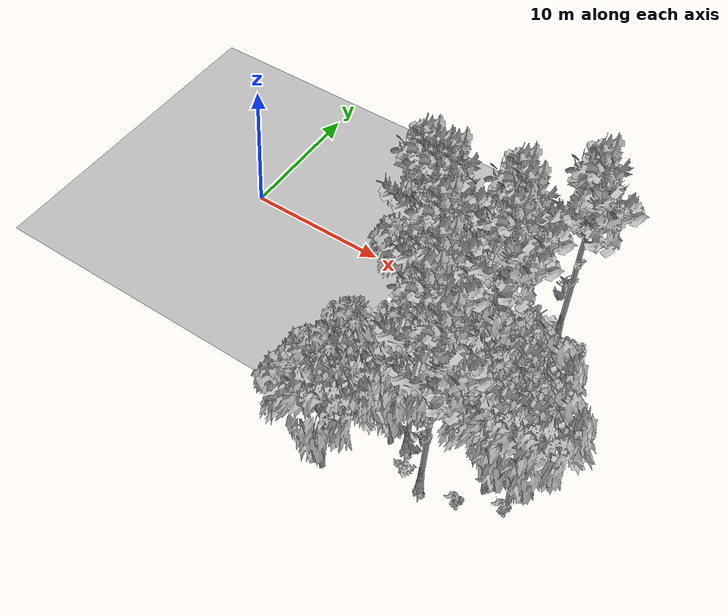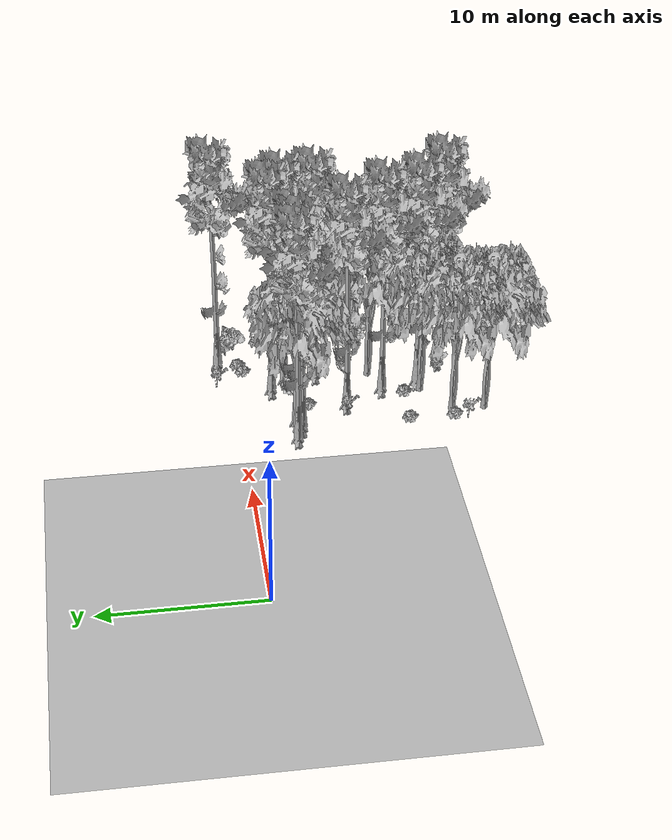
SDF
<sdf version="1.7">
 <world name="default">
  <model name="ground_plane">
   <static>1</static>
   <link name="link">
    <collision name="collision">
     <pose>-50 0 0 0 -0 0</pose>
     <geometry><plane><normal>0 0 1</normal><size>80 80</size></plane></geometry>
     <surface><contact><ode><min_depth>0.01</min_depth><max_vel>0</max_vel></ode></contact></surface>
    </collision>
    <visual name="grass">
     <cast_shadows>0</cast_shadows>
     <geometry>
      <mesh>
       <scale>0.46714285714285714 0.46714285714285714 0.1</scale>
       <uri>file://grass_plane/meshes/grass_plane.dae</uri>
      </mesh>
     </geometry>
    </visual>
   </link>
  </model>
  <model name="Tree 22">
   <static>1</static>
   <pose>17.93072635077457 -7.0581959620496875 0 1.57079 -0 0</pose>
   <link name="link">
    <collision name="collision">
     <geometry><mesh><scale>3.5 5 3.5</scale><uri>model://tree_9/meshes/tree_9.obj</uri></mesh></geometry>
    </collision>
    <visual name="visual">
     <geometry><mesh><scale>3.5 5 3.5</scale><uri>model://tree_9/meshes/tree_9.obj</uri></mesh></geometry>
    </visual>
   </link>
  </model>
  <model name="Tree 35">
   <static>1</static>
   <pose>23.560154241054924 0.8513287105435481 0 1.57079 -0 0</pose>
   <link name="link">
    <collision name="collision">
     <geometry><mesh><scale>3.5 5 3.5</scale><uri>model://tree_9/meshes/tree_9.obj</uri></mesh></geometry>
    </collision>
    <visual name="visual">
     <geometry><mesh><scale>3.5 5 3.5</scale><uri>model://tree_9/meshes/tree_9.obj</uri></mesh></geometry>
    </visual>
   </link>
  </model>
  <model name="Tree 61">
   <static>1</static>
   <pose>19.406692107166158 -9.603387408347608 0 1.57079 -0 0</pose>
   <link name="link">
    <collision name="collision">
     <geometry><mesh><scale>3.5 5 3.5</scale><uri>model://tree_9/meshes/tree_9.obj</uri></mesh></geometry>
    </collision>
    <visual name="visual">
     <geometry><mesh><scale>3.5 5 3.5</scale><uri>model://tree_9/meshes/tree_9.obj</uri></mesh></geometry>
    </visual>
   </link>
  </model>
  <model name="Tree 63">
   <static>1</static>
   <pose>15.782586844155269 -3.881126946999416 0 1.57079 -0 0</pose>
   <link name="link">
    <collision name="collision">
     <geometry><mesh><scale>3.5 5 3.5</scale><uri>model://tree_9/meshes/tree_9.obj</uri></mesh></geometry>
    </collision>
    <visual name="visual">
     <geometry><mesh><scale>3.5 5 3.5</scale><uri>model://tree_9/meshes/tree_9.obj</uri></mesh></geometry>
    </visual>
   </link>
  </model>
  <model name="Tree 71">
   <static>1</static>
   <pose>21.22704594530395 -3.385305330474715 0 1.57079 -0 0</pose>
   <link name="link">
    <collision name="collision">
     <geometry><mesh><scale>3.5 5 3.5</scale><uri>model://tree_9/meshes/tree_9.obj</uri></mesh></geometry>
    </collision>
    <visual name="visual">
     <geometry><mesh><scale>3.5 5 3.5</scale><uri>model://tree_9/meshes/tree_9.obj</uri></mesh></geometry>
    </visual>
   </link>
  </model>
  <model name="Tree 92">
   <static>1</static>
   <pose>21.49200178115271 -5.472331842266414 0 1.57079 -0 0</pose>
   <link name="link">
    <collision name="collision">
     <geometry><mesh><scale>3.5 5 3.5</scale><uri>model://tree_9/meshes/tree_9.obj</uri></mesh></geometry>
    </collision>
    <visual name="visual">
     <geometry><mesh><scale>3.5 5 3.5</scale><uri>model://tree_9/meshes/tree_9.obj</uri></mesh></geometry>
    </visual>
   </link>
  </model>
  <model name="Tree 153">
   <static>1</static>
   <pose>16.288067120371352 -15.854678253488217 0 1.57079 -0 0</pose>
   <link name="link">
    <collision name="collision">
     <geometry><mesh><scale>3.5 5 3.5</scale><uri>model://tree_2/meshes/tree_2.obj</uri></mesh></geometry>
    </collision>
    <visual name="visual">
     <geometry><mesh><scale>3.5 5 3.5</scale><uri>model://tree_2/meshes/tree_2.obj</uri></mesh></geometry>
    </visual>
   </link>
  </model>
  <model name="Tree 208">
   <static>1</static>
   <pose>25.091155581399313 -11.76394968796112 0 1.57079 -0 0</pose>
   <link name="link">
    <collision name="collision">
     <geometry><mesh><scale>3.5 5 3.5</scale><uri>model://tree_2/meshes/tree_2.obj</uri></mesh></geometry>
    </collision>
    <visual name="visual">
     <geometry><mesh><scale>3.5 5 3.5</scale><uri>model://tree_2/meshes/tree_2.obj</uri></mesh></geometry>
    </visual>
   </link>
  </model>
  <model name="Tree 301">
   <static>1</static>
   <pose>16.416127334066104 -13.750272357396174 0 1.57079 -0 0</pose>
   <link name="link">
    <collision name="collision">
     <geometry><mesh><scale>3.5 5 3.5</scale><uri>model://tree_2/meshes/tree_2.obj</uri></mesh></geometry>
    </collision>
    <visual name="visual">
     <geometry><mesh><scale>3.5 5 3.5</scale><uri>model://tree_2/meshes/tree_2.obj</uri></mesh></geometry>
    </visual>
   </link>
  </model>
  <model name="Tree 322">
   <static>1</static>
   <pose>22.002366921474334 -13.85776121150423 0 1.57079 -0 0</pose>
   <link name="link">
    <collision name="collision">
     <geometry><mesh><scale>3.5 5 3.5</scale><uri>model://tree_9/meshes/tree_9.obj</uri></mesh></geometry>
    </collision>
    <visual name="visual">
     <geometry><mesh><scale>3.5 5 3.5</scale><uri>model://tree_9/meshes/tree_9.obj</uri></mesh></geometry>
    </visual>
   </link>
  </model>
  <model name="Tree 329">
   <static>1</static>
   <pose>20.191563070249344 -2.398712455429937 0 1.57079 -0 0</pose>
   <link name="link">
    <collision name="collision">
     <geometry><mesh><scale>3.5 5 3.5</scale><uri>model://tree_9/meshes/tree_9.obj</uri></mesh></geometry>
    </collision>
    <visual name="visual">
     <geometry><mesh><scale>3.5 5 3.5</scale><uri>model://tree_9/meshes/tree_9.obj</uri></mesh></geometry>
    </visual>
   </link>
  </model>
  <model name="Tree 330">
   <static>1</static>
   <pose>16.520022956432484 -3.5659732744263195 0 1.57079 -0 0</pose>
   <link name="link">
    <collision name="collision">
     <geometry><mesh><scale>3.5 5 3.5</scale><uri>model://tree_9/meshes/tree_9.obj</uri></mesh></geometry>
    </collision>
    <visual name="visual">
     <geometry><mesh><scale>3.5 5 3.5</scale><uri>model://tree_9/meshes/tree_9.obj</uri></mesh></geometry>
    </visual>
   </link>
  </model>
  <model name="Tree 482">
   <static>1</static>
   <pose>15.929258608481021 -3.547206848155213 0 1.57079 -0 0</pose>
   <link name="link">
    <collision name="collision">
     <geometry><mesh><scale>3.5 5 3.5</scale><uri>model://tree_2/meshes/tree_2.obj</uri></mesh></geometry>
    </collision>
    <visual name="visual">
     <geometry><mesh><scale>3.5 5 3.5</scale><uri>model://tree_2/meshes/tree_2.obj</uri></mesh></geometry>
    </visual>
   </link>
  </model>
  <model name="Tree 528">
   <static>1</static>
   <pose>26.603692096509036 -11.511945223129054 0 1.57079 -0 0</pose>
   <link name="link">
    <collision name="collision">
     <geometry><mesh><scale>3.5 5 3.5</scale><uri>model://tree_2/meshes/tree_2.obj</uri></mesh></geometry>
    </collision>
    <visual name="visual">
     <geometry><mesh><scale>3.5 5 3.5</scale><uri>model://tree_2/meshes/tree_2.obj</uri></mesh></geometry>
    </visual>
   </link>
  </model>
  <model name="Tree 530">
   <static>1</static>
   <pose>19.950017085288337 -12.022523761382917 0 1.57079 -0 0</pose>
   <link name="link">
    <collision name="collision">
     <geometry><mesh><scale>3.5 5 3.5</scale><uri>model://tree_9/meshes/tree_9.obj</uri></mesh></geometry>
    </collision>
    <visual name="visual">
     <geometry><mesh><scale>3.5 5 3.5</scale><uri>model://tree_9/meshes/tree_9.obj</uri></mesh></geometry>
    </visual>
   </link>
  </model>
  <model name="Tree 566">
   <static>1</static>
   <pose>14.736809087224167 -3.470317891143168 0 1.57079 -0 0</pose>
   <link name="link">
    <collision name="collision">
     <geometry><mesh><scale>3.5 5 3.5</scale><uri>model://tree_9/meshes/tree_9.obj</uri></mesh></geometry>
    </collision>
    <visual name="visual">
     <geometry><mesh><scale>3.5 5 3.5</scale><uri>model://tree_9/meshes/tree_9.obj</uri></mesh></geometry>
    </visual>
   </link>
  </model>
  <model name="Tree 580">
   <static>1</static>
   <pose>18.760078622063546 -12.07713338349814 0 1.57079 -0 0</pose>
   <link name="link">
    <collision name="collision">
     <geometry><mesh><scale>3.5 5 3.5</scale><uri>model://tree_2/meshes/tree_2.obj</uri></mesh></geometry>
    </collision>
    <visual name="visual">
     <geometry><mesh><scale>3.5 5 3.5</scale><uri>model://tree_2/meshes/tree_2.obj</uri></mesh></geometry>
    </visual>
   </link>
  </model>
  <model name="Tree 602">
   <static>1</static>
   <pose>24.691011484557002 -8.632221175078058 0 1.57079 -0 0</pose>
   <link name="link">
    <collision name="collision">
     <geometry><mesh><scale>3.5 5 3.5</scale><uri>model://tree_2/meshes/tree_2.obj</uri></mesh></geometry>
    </collision>
    <visual name="visual">
     <geometry><mesh><scale>3.5 5 3.5</scale><uri>model://tree_2/meshes/tree_2.obj</uri></mesh></geometry>
    </visual>
   </link>
  </model>
  <model name="Tree 631">
   <static>1</static>
   <pose>20.92272238685665 -8.930307453230569 0 1.57079 -0 0</pose>
   <link name="link">
    <collision name="collision">
     <geometry><mesh><scale>3.5 5 3.5</scale><uri>model://tree_2/meshes/tree_2.obj</uri></mesh></geometry>
    </collision>
    <visual name="visual">
     <geometry><mesh><scale>3.5 5 3.5</scale><uri>model://tree_2/meshes/tree_2.obj</uri></mesh></geometry>
    </visual>
   </link>
  </model>
  <model name="Bush 5">
   <static>1</static>
   <pose>21.658402910729933 -4.300167969971412 0 1.57079 -0 0</pose>
   <link name="link">
    <collision name="collision">
     <geometry><mesh><scale>2 2 2</scale><uri>model://bush_2/meshes/bush_2.obj</uri></mesh></geometry>
     <surface><contact><collide_without_contact>false</collide_without_contact></contact></surface>
    </collision>
    <visual name="visual">
     <geometry><mesh><scale>2 2 2</scale><uri>model://bush_2/meshes/bush_2.obj</uri></mesh></geometry>
    </visual>
   </link>
  </model>
  <model name="Bush 21">
   <static>1</static>
   <pose>19.257141515925113 -3.784790251377572 0 1.57079 -0 0</pose>
   <link name="link">
    <collision name="collision">
     <geometry><mesh><scale>2 2 2</scale><uri>model://bush_1/meshes/bush_1.obj</uri></mesh></geometry>
     <surface><contact><collide_without_contact>false</collide_without_contact></contact></surface>
    </collision>
    <visual name="visual">
     <geometry><mesh><scale>2 2 2</scale><uri>model://bush_1/meshes/bush_1.obj</uri></mesh></geometry>
    </visual>
   </link>
  </model>
  <model name="Bush 45">
   <static>1</static>
   <pose>16.768082349217195 -6.889659209560854 0 1.57079 -0 0</pose>
   <link name="link">
    <collision name="collision">
     <geometry><mesh><scale>2 2 2</scale><uri>model://bush_5/meshes/bush_5.obj</uri></mesh></geometry>
     <surface><contact><collide_without_contact>false</collide_without_contact></contact></surface>
    </collision>
    <visual name="visual">
     <geometry><mesh><scale>2 2 2</scale><uri>model://bush_5/meshes/bush_5.obj</uri></mesh></geometry>
    </visual>
   </link>
  </model>
  <model name="Bush 71">
   <static>1</static>
   <pose>23.647384290195795 -3.7818679898691627 0 1.57079 -0 0</pose>
   <link name="link">
    <collision name="collision">
     <geometry><mesh><scale>2 2 2</scale><uri>model://bush_0/meshes/bush_0.obj</uri></mesh></geometry>
     <surface><contact><collide_without_contact>false</collide_without_contact></contact></surface>
    </collision>
    <visual name="visual">
     <geometry><mesh><scale>2 2 2</scale><uri>model://bush_0/meshes/bush_0.obj</uri></mesh></geometry>
    </visual>
   </link>
  </model>
  <model name="Bush 89">
   <static>1</static>
   <pose>25.062552333457575 -0.31772712422770866 0 1.57079 -0 0</pose>
   <link name="link">
    <collision name="collision">
     <geometry><mesh><scale>2 2 2</scale><uri>model://bush_1/meshes/bush_1.obj</uri></mesh></geometry>
     <surface><contact><collide_without_contact>false</collide_without_contact></contact></surface>
    </collision>
    <visual name="visual">
     <geometry><mesh><scale>2 2 2</scale><uri>model://bush_1/meshes/bush_1.obj</uri></mesh></geometry>
    </visual>
   </link>
  </model>
  <model name="Bush 153">
   <static>1</static>
   <pose>22.413366932812437 -2.977318821729959 0 1.57079 -0 0</pose>
   <link name="link">
    <collision name="collision">
     <geometry><mesh><scale>2 2 2</scale><uri>model://bush_2/meshes/bush_2.obj</uri></mesh></geometry>
     <surface><contact><collide_without_contact>false</collide_without_contact></contact></surface>
    </collision>
    <visual name="visual">
     <geometry><mesh><scale>2 2 2</scale><uri>model://bush_2/meshes/bush_2.obj</uri></mesh></geometry>
    </visual>
   </link>
  </model>
  <model name="Bush 206">
   <static>1</static>
   <pose>26.26181047440781 -9.52676586941756 0 1.57079 -0 0</pose>
   <link name="link">
    <collision name="collision">
     <geometry><mesh><scale>2 2 2</scale><uri>model://bush_4/meshes/bush_4.obj</uri></mesh></geometry>
     <surface><contact><collide_without_contact>false</collide_without_contact></contact></surface>
    </collision>
    <visual name="visual">
     <geometry><mesh><scale>2 2 2</scale><uri>model://bush_4/meshes/bush_4.obj</uri></mesh></geometry>
    </visual>
   </link>
  </model>
  <model name="Bush 220">
   <static>1</static>
   <pose>18.11833235615243 -4.592628757492804 0 1.57079 -0 0</pose>
   <link name="link">
    <collision name="collision">
     <geometry><mesh><scale>2 2 2</scale><uri>model://bush_2/meshes/bush_2.obj</uri></mesh></geometry>
     <surface><contact><collide_without_contact>false</collide_without_contact></contact></surface>
    </collision>
    <visual name="visual">
     <geometry><mesh><scale>2 2 2</scale><uri>model://bush_2/meshes/bush_2.obj</uri></mesh></geometry>
    </visual>
   </link>
  </model>
  <model name="Bush 253">
   <static>1</static>
   <pose>26.550438770088917 -12.04779033504127 0 1.57079 -0 0</pose>
   <link name="link">
    <collision name="collision">
     <geometry><mesh><scale>2 2 2</scale><uri>model://bush_2/meshes/bush_2.obj</uri></mesh></geometry>
     <surface><contact><collide_without_contact>false</collide_without_contact></contact></surface>
    </collision>
    <visual name="visual">
     <geometry><mesh><scale>2 2 2</scale><uri>model://bush_2/meshes/bush_2.obj</uri></mesh></geometry>
    </visual>
   </link>
  </model>
  <model name="Bush 314">
   <static>1</static>
   <pose>20.883977499055554 1.185798848652226 0 1.57079 -0 0</pose>
   <link name="link">
    <collision name="collision">
     <geometry><mesh><scale>2 2 2</scale><uri>model://bush_5/meshes/bush_5.obj</uri></mesh></geometry>
     <surface><contact><collide_without_contact>false</collide_without_contact></contact></surface>
    </collision>
    <visual name="visual">
     <geometry><mesh><scale>2 2 2</scale><uri>model://bush_5/meshes/bush_5.obj</uri></mesh></geometry>
    </visual>
   </link>
  </model>
  <model name="Bush 332">
   <static>1</static>
   <pose>15.930518029997714 -10.944414027492737 0 1.57079 -0 0</pose>
   <link name="link">
    <collision name="collision">
     <geometry><mesh><scale>2 2 2</scale><uri>model://bush_2/meshes/bush_2.obj</uri></mesh></geometry>
     <surface><contact><collide_without_contact>false</collide_without_contact></contact></surface>
    </collision>
    <visual name="visual">
     <geometry><mesh><scale>2 2 2</scale><uri>model://bush_2/meshes/bush_2.obj</uri></mesh></geometry>
    </visual>
   </link>
  </model>
  <model name="Bush 384">
   <static>1</static>
   <pose>25.216976589963686 -2.7329305931522825 0 1.57079 -0 0</pose>
   <link name="link">
    <collision name="collision">
     <geometry><mesh><scale>2 2 2</scale><uri>model://bush_2/meshes/bush_2.obj</uri></mesh></geometry>
     <surface><contact><collide_without_contact>false</collide_without_contact></contact></surface>
    </collision>
    <visual name="visual">
     <geometry><mesh><scale>2 2 2</scale><uri>model://bush_2/meshes/bush_2.obj</uri></mesh></geometry>
    </visual>
   </link>
  </model>
  <model name="Bush 385">
   <static>1</static>
   <pose>24.46908591438065 0.2913590207800496 0 1.57079 -0 0</pose>
   <link name="link">
    <collision name="collision">
     <geometry><mesh><scale>2 2 2</scale><uri>model://bush_0/meshes/bush_0.obj</uri></mesh></geometry>
     <surface><contact><collide_without_contact>false</collide_without_contact></contact></surface>
    </collision>
    <visual name="visual">
     <geometry><mesh><scale>2 2 2</scale><uri>model://bush_0/meshes/bush_0.obj</uri></mesh></geometry>
    </visual>
   </link>
  </model>
  <model name="Bush 418">
   <static>1</static>
   <pose>21.555314665657946 -7.415288838885942 0 1.57079 -0 0</pose>
   <link name="link">
    <collision name="collision">
     <geometry><mesh><scale>2 2 2</scale><uri>model://bush_4/meshes/bush_4.obj</uri></mesh></geometry>
     <surface><contact><collide_without_contact>false</collide_without_contact></contact></surface>
    </collision>
    <visual name="visual">
     <geometry><mesh><scale>2 2 2</scale><uri>model://bush_4/meshes/bush_4.obj</uri></mesh></geometry>
    </visual>
   </link>
  </model>
  <model name="Bush 422">
   <static>1</static>
   <pose>24.199306699714285 -4.117119175292181 0 1.57079 -0 0</pose>
   <link name="link">
    <collision name="collision">
     <geometry><mesh><scale>2 2 2</scale><uri>model://bush_4/meshes/bush_4.obj</uri></mesh></geometry>
     <surface><contact><collide_without_contact>false</collide_without_contact></contact></surface>
    </collision>
    <visual name="visual">
     <geometry><mesh><scale>2 2 2</scale><uri>model://bush_4/meshes/bush_4.obj</uri></mesh></geometry>
    </visual>
   </link>
  </model>
  <model name="Bush 424">
   <static>1</static>
   <pose>20.82288347943134 -13.552554662414835 0 1.57079 -0 0</pose>
   <link name="link">
    <collision name="collision">
     <geometry><mesh><scale>2 2 2</scale><uri>model://bush_0/meshes/bush_0.obj</uri></mesh></geometry>
     <surface><contact><collide_without_contact>false</collide_without_contact></contact></surface>
    </collision>
    <visual name="visual">
     <geometry><mesh><scale>2 2 2</scale><uri>model://bush_0/meshes/bush_0.obj</uri></mesh></geometry>
    </visual>
   </link>
  </model>
  <model name="Bush 432">
   <static>1</static>
   <pose>15.923283164268561 -13.875593378086101 0 1.57079 -0 0</pose>
   <link name="link">
    <collision name="collision">
     <geometry><mesh><scale>2 2 2</scale><uri>model://bush_2/meshes/bush_2.obj</uri></mesh></geometry>
     <surface><contact><collide_without_contact>false</collide_without_contact></contact></surface>
    </collision>
    <visual name="visual">
     <geometry><mesh><scale>2 2 2</scale><uri>model://bush_2/meshes/bush_2.obj</uri></mesh></geometry>
    </visual>
   </link>
  </model>
  <model name="Bush 461">
   <static>1</static>
   <pose>15.455032734350986 -14.566776189947674 0 1.57079 -0 0</pose>
   <link name="link">
    <collision name="collision">
     <geometry><mesh><scale>2 2 2</scale><uri>model://bush_5/meshes/bush_5.obj</uri></mesh></geometry>
     <surface><contact><collide_without_contact>false</collide_without_contact></contact></surface>
    </collision>
    <visual name="visual">
     <geometry><mesh><scale>2 2 2</scale><uri>model://bush_5/meshes/bush_5.obj</uri></mesh></geometry>
    </visual>
   </link>
  </model>
  <model name="Bush 477">
   <static>1</static>
   <pose>22.37606483157186 -0.731132216696075 0 1.57079 -0 0</pose>
   <link name="link">
    <collision name="collision">
     <geometry><mesh><scale>2 2 2</scale><uri>model://bush_2/meshes/bush_2.obj</uri></mesh></geometry>
     <surface><contact><collide_without_contact>false</collide_without_contact></contact></surface>
    </collision>
    <visual name="visual">
     <geometry><mesh><scale>2 2 2</scale><uri>model://bush_2/meshes/bush_2.obj</uri></mesh></geometry>
    </visual>
   </link>
  </model>
  <model name="Bush 520">
   <static>1</static>
   <pose>18.773216766325476 -11.040001755059812 0 1.57079 -0 0</pose>
   <link name="link">
    <collision name="collision">
     <geometry><mesh><scale>2 2 2</scale><uri>model://bush_2/meshes/bush_2.obj</uri></mesh></geometry>
     <surface><contact><collide_without_contact>false</collide_without_contact></contact></surface>
    </collision>
    <visual name="visual">
     <geometry><mesh><scale>2 2 2</scale><uri>model://bush_2/meshes/bush_2.obj</uri></mesh></geometry>
    </visual>
   </link>
  </model>
  <model name="Bush 532">
   <static>1</static>
   <pose>23.81628725193525 -8.484203716422467 0 1.57079 -0 0</pose>
   <link name="link">
    <collision name="collision">
     <geometry><mesh><scale>2 2 2</scale><uri>model://bush_0/meshes/bush_0.obj</uri></mesh></geometry>
     <surface><contact><collide_without_contact>false</collide_without_contact></contact></surface>
    </collision>
    <visual name="visual">
     <geometry><mesh><scale>2 2 2</scale><uri>model://bush_0/meshes/bush_0.obj</uri></mesh></geometry>
    </visual>
   </link>
  </model>
  <model name="Bush 536">
   <static>1</static>
   <pose>24.049060610610482 -13.251447638199217 0 1.57079 -0 0</pose>
   <link name="link">
    <collision name="collision">
     <geometry><mesh><scale>2 2 2</scale><uri>model://bush_2/meshes/bush_2.obj</uri></mesh></geometry>
     <surface><contact><collide_without_contact>false</collide_without_contact></contact></surface>
    </collision>
    <visual name="visual">
     <geometry><mesh><scale>2 2 2</scale><uri>model://bush_2/meshes/bush_2.obj</uri></mesh></geometry>
    </visual>
   </link>
  </model>
  <model name="Bush 562">
   <static>1</static>
   <pose>25.047049054945646 -11.20433868917668 0 1.57079 -0 0</pose>
   <link name="link">
    <collision name="collision">
     <geometry><mesh><scale>2 2 2</scale><uri>model://bush_2/meshes/bush_2.obj</uri></mesh></geometry>
     <surface><contact><collide_without_contact>false</collide_without_contact></contact></surface>
    </collision>
    <visual name="visual">
     <geometry><mesh><scale>2 2 2</scale><uri>model://bush_2/meshes/bush_2.obj</uri></mesh></geometry>
    </visual>
   </link>
  </model>
  <model name="Bush 586">
   <static>1</static>
   <pose>25.724597372381893 -2.003556872571508 0 1.57079 -0 0</pose>
   <link name="link">
    <collision name="collision">
     <geometry><mesh><scale>2 2 2</scale><uri>model://bush_2/meshes/bush_2.obj</uri></mesh></geometry>
     <surface><contact><collide_without_contact>false</collide_without_contact></contact></surface>
    </collision>
    <visual name="visual">
     <geometry><mesh><scale>2 2 2</scale><uri>model://bush_2/meshes/bush_2.obj</uri></mesh></geometry>
    </visual>
   </link>
  </model>
  <model name="Bush 619">
   <static>1</static>
   <pose>23.138838355179807 -0.44923015301495184 0 1.57079 -0 0</pose>
   <link name="link">
    <collision name="collision">
     <geometry><mesh><scale>2 2 2</scale><uri>model://bush_2/meshes/bush_2.obj</uri></mesh></geometry>
     <surface><contact><collide_without_contact>false</collide_without_contact></contact></surface>
    </collision>
    <visual name="visual">
     <geometry><mesh><scale>2 2 2</scale><uri>model://bush_2/meshes/bush_2.obj</uri></mesh></geometry>
    </visual>
   </link>
  </model>
  <model name="Bush 625">
   <static>1</static>
   <pose>25.331379739504584 -7.7951951441178196 0 1.57079 -0 0</pose>
   <link name="link">
    <collision name="collision">
     <geometry><mesh><scale>2 2 2</scale><uri>model://bush_2/meshes/bush_2.obj</uri></mesh></geometry>
     <surface><contact><collide_without_contact>false</collide_without_contact></contact></surface>
    </collision>
    <visual name="visual">
     <geometry><mesh><scale>2 2 2</scale><uri>model://bush_2/meshes/bush_2.obj</uri></mesh></geometry>
    </visual>
   </link>
  </model>
 </world>
</sdf>
